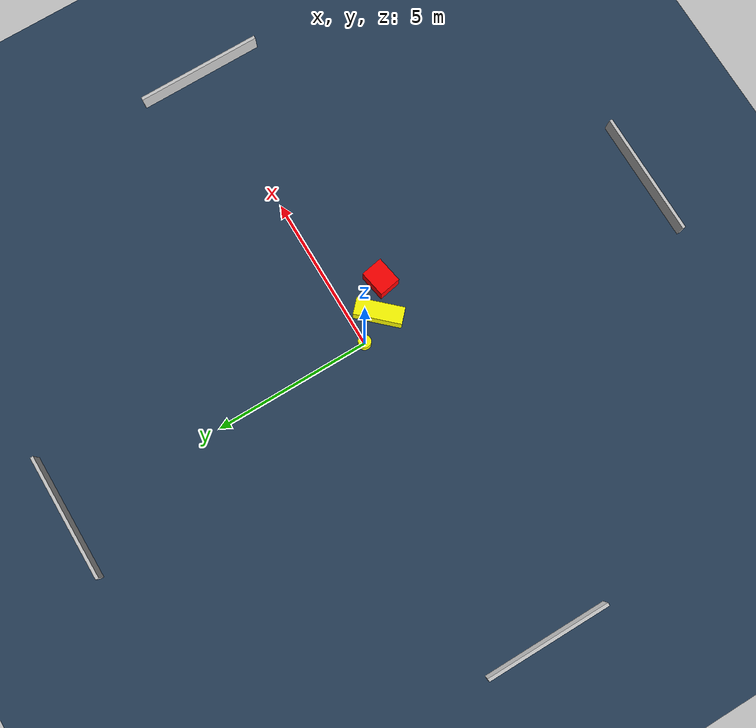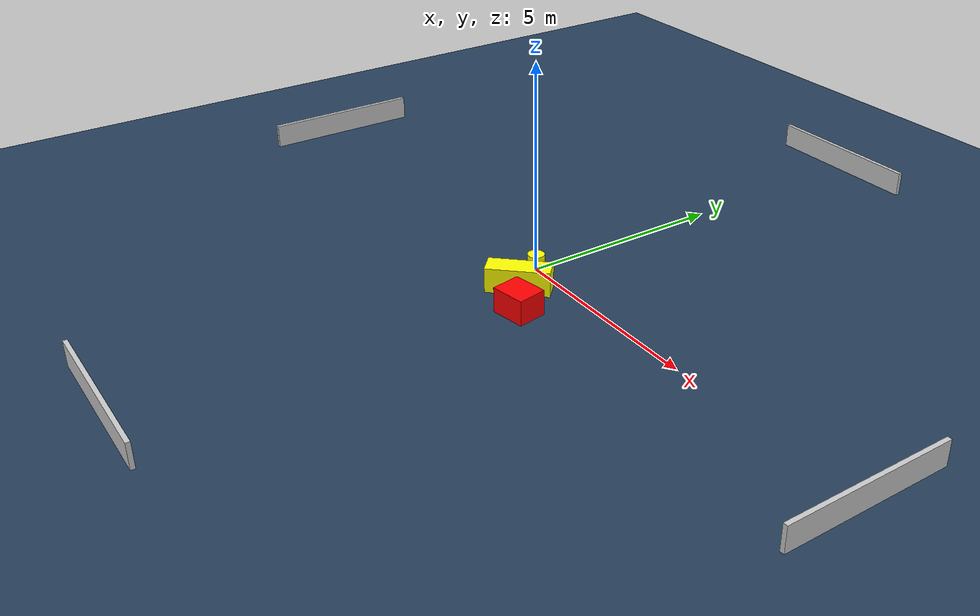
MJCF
<?xml version="1.0" ?>
<mujoco model="generated_environment">
  <option timestep="0.01" integrator="RK4" cone="elliptic"/>
  <default>
    <geom density="1"/>
  </default>
  <asset>
    <texture builtin="gradient" height="3072" name="skybox" rgb1="0.3 0.5 0.7" rgb2="0 0 0" type="skybox" width="512"/>
    <texture builtin="checker" height="300" name="groundplane" rgb1="0.2 0.3 0.4" rgb2="0.1 0.2 0.3" type="2d" width="300"/>
    <material name="groundplane" reflectance="0.2" texrepeat="5 5" texture="groundplane"/>
  </asset>
  <worldbody>
    <light dir="0 0 -1" directional="true" pos="0 0 1.5"/>
    <geom condim="3" friction="0.5 0.005 0.001" material="groundplane" name="floor" pos="0 0 0" size="0 0 0.05" type="plane"/>
    <body name="walls">
      <geom name="wall_1" condim="4" pos="-10.0 0.0 0.3" rgba="0.800000011920929 0.800000011920929 0.800000011920929 1.0" size="0.05 2.0 0.3" type="box"/>
      <geom name="wall_2" condim="4" pos="10.0 0.0 0.3" rgba="0.800000011920929 0.800000011920929 0.800000011920929 1.0" size="0.05 2.0 0.3" type="box"/>
      <geom name="wall_3" condim="4" pos="0.0 -10.0 0.3" rgba="0.800000011920929 0.800000011920929 0.800000011920929 1.0" size="2.0 0.05 0.3" type="box"/>
      <geom name="wall_4" condim="4" pos="0.0 10.0 0.3" rgba="0.800000011920929 0.800000011920929 0.800000011920929 1.0" size="2.0 0.05 0.3" type="box"/>
    </body>
    <body name="robot">
      <joint name="joint_x" type="slide" pos="0 0 0" axis="1 0 0"/>
      <joint name="joint_y" type="slide" pos="0 0 0" axis="0 1 0"/>
      <geom name="robot" type="cylinder" pos="0.0 0.0 0.2" size="0.2 0.2 0.0" mass="5.0" friction="1.0 0.005 0.0001" condim="4" rgba="1.0 1.0 0.0 1.0"/>
    </body>
    <body name="obstacle_1_movable">
      <geom name="obstacle_1_movable" condim="4" pos="0.5363927441531233 -0.8254137893058358 0.3" euler="0 0 226.79047320569688" friction="0.0 0.005 0.001" rgba="1.0 1.0 0.0 1.0" size="0.7409867206286449 0.2640110098590093 0.3" type="box" mass="0.1"/>
      <joint type="free"/>
    </body>
    <body name="obstacle_2_static">
      <geom name="obstacle_2_static" condim="4" pos="1.39766912817105 -1.3986035246175208 0.3" euler="0 0 190.26539085497646" friction="0.0 0.005 0.001" rgba="1.0 0.0 0.0 1.0" size="0.42421373217851466 0.35012576187935907 0.3" type="box"/>
    </body>
  </worldbody>
  <actuator>
    <motor name="actuator_x" joint="joint_x" gear="1" ctrlrange="-1 1"/>
    <motor name="actuator_y" joint="joint_y" gear="1" ctrlrange="-1 1"/>
  </actuator>
</mujoco>
